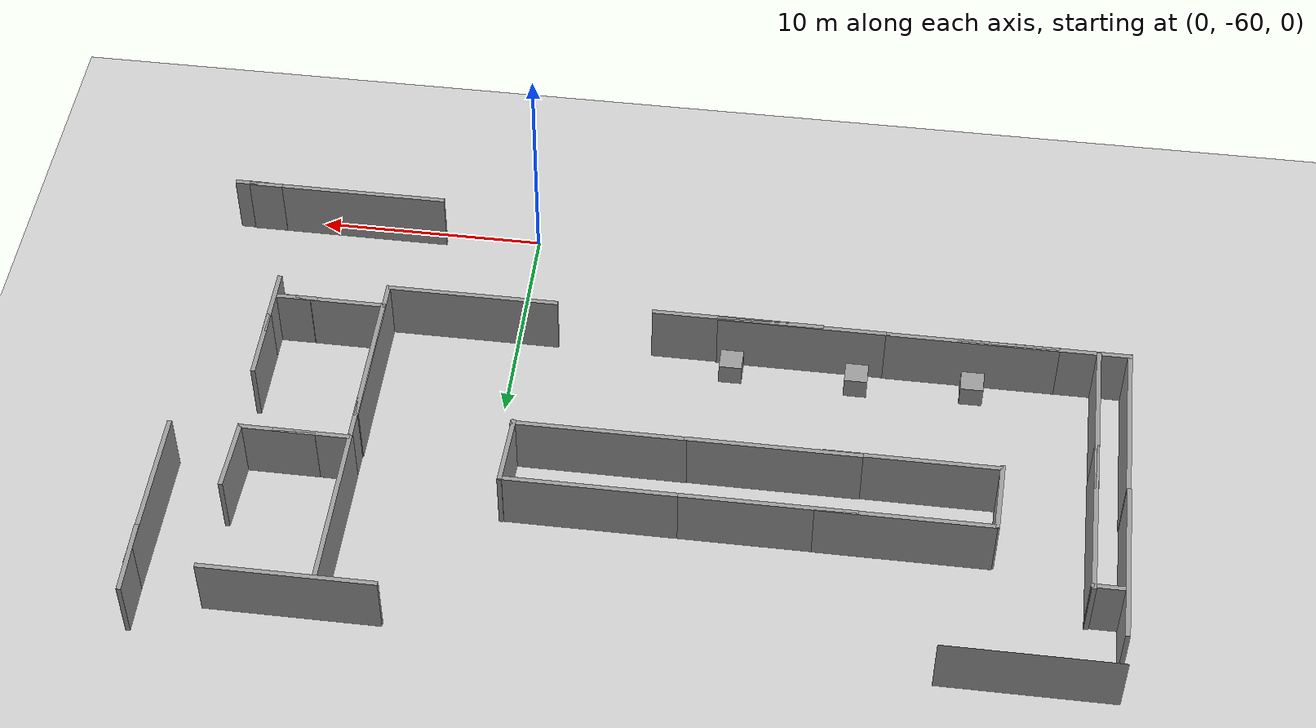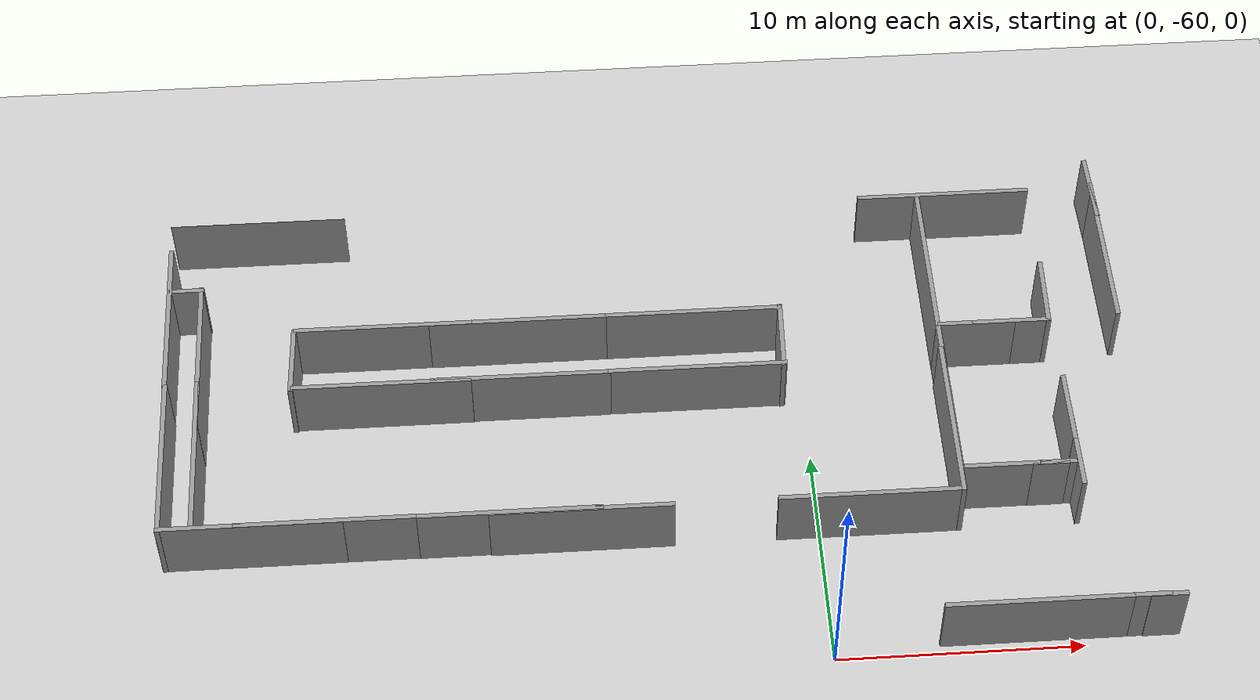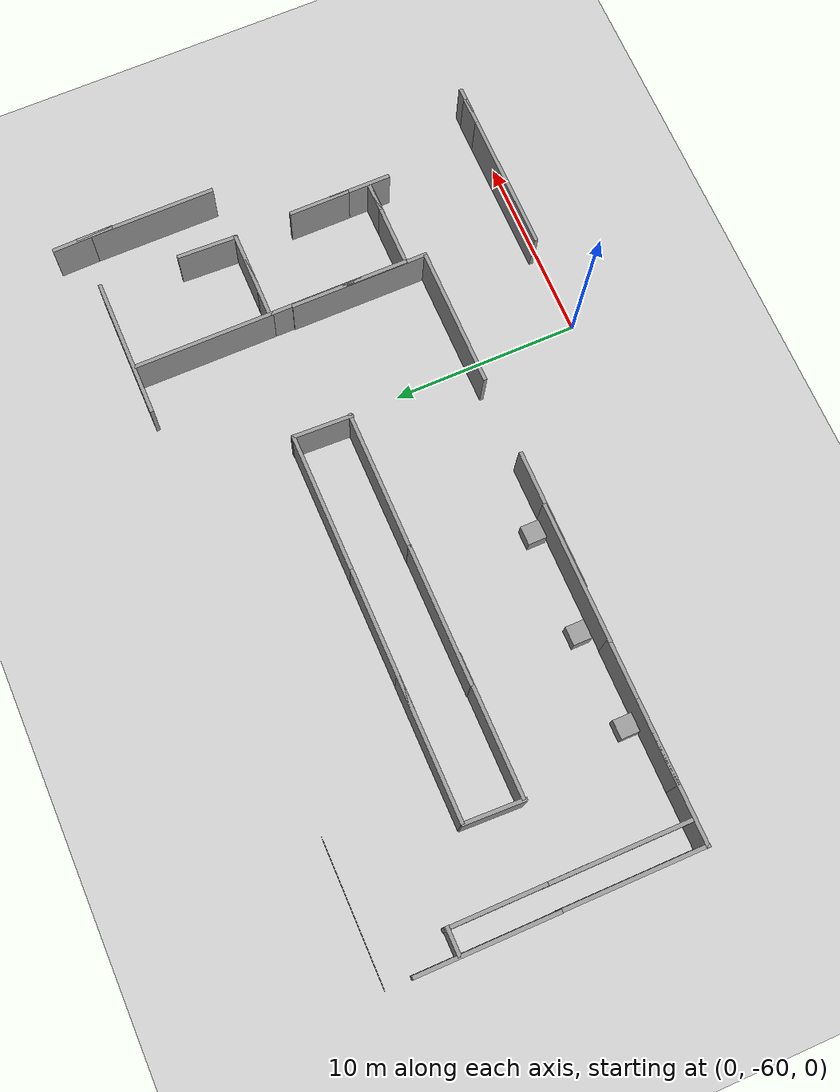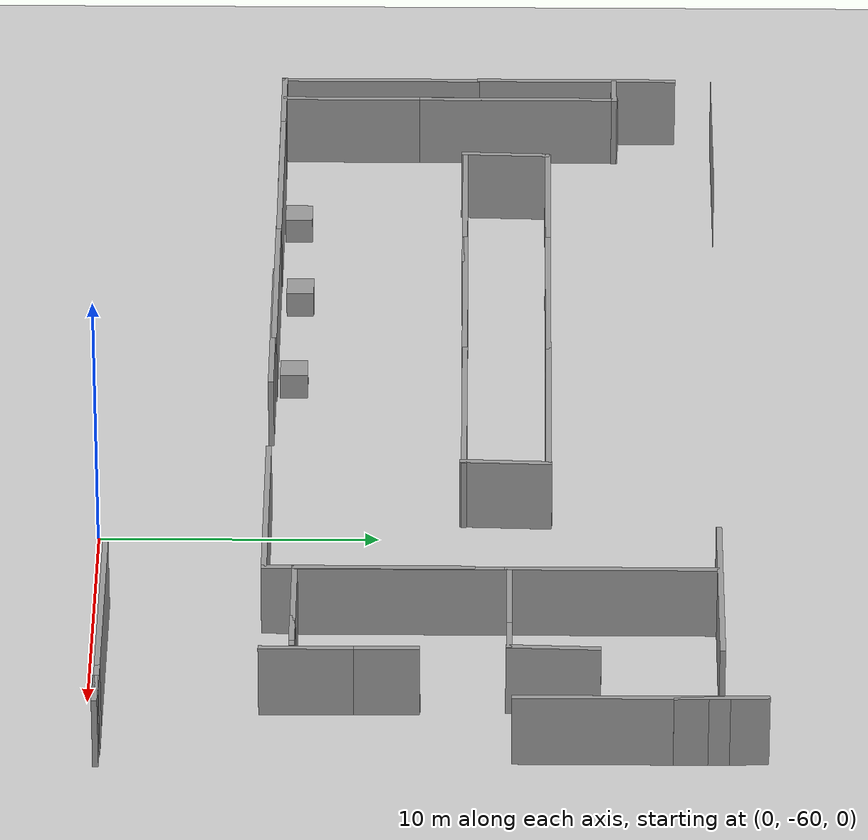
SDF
<sdf version="1.7">
 <world name="default">
  <model name="ground_plane">
   <static>1</static>
   <link name="link">
    <collision name="collision">
     <geometry><plane><normal>0 0 1</normal><size>100 100</size></plane></geometry>
     <surface>
      <contact><collide_bitmask>65535</collide_bitmask></contact>
      <friction><ode><mu>100</mu><mu2>50</mu2></ode></friction>
     </surface>
    </collision>
    <visual name="visual">
     <cast_shadows>0</cast_shadows>
     <geometry><plane><normal>0 0 1</normal><size>100 100</size></plane></geometry>
     <material>
      <script><uri>file://media/materials/scripts/gazebo.material</uri><name>Gazebo/Grey</name></script>
     </material>
    </visual>
   </link>
  </model>
  <model name="grey_wall_0_clone">
   <static>1</static>
   <link name="link">
    <pose>0 0 1.4 0 -0 0</pose>
    <collision name="collision"><geometry><box><size>7.5 0.2 2.8</size></box></geometry></collision>
    <visual name="visual">
     <cast_shadows>0</cast_shadows>
     <geometry><box><size>7.5 0.2 2.8</size></box></geometry>
     <material>
      <script>
       <uri>model://grey_wall/materials/scripts</uri>
       <uri>model://grey_wall/materials/textures</uri>
       <name>vrc/grey_wall</name>
      </script>
     </material>
    </visual>
   </link>
   <pose>-26.6851 -42.8415 0 0 -0 1.5708</pose>
  </model>
  <model name="grey_wall_0_clone_0">
   <static>1</static>
   <link name="link">
    <pose>0 0 1.4 0 -0 0</pose>
    <collision name="collision"><geometry><box><size>7.5 0.2 2.8</size></box></geometry></collision>
    <visual name="visual">
     <cast_shadows>0</cast_shadows>
     <geometry><box><size>7.5 0.2 2.8</size></box></geometry>
     <material>
      <script>
       <uri>model://grey_wall/materials/scripts</uri>
       <uri>model://grey_wall/materials/textures</uri>
       <name>vrc/grey_wall</name>
      </script>
     </material>
    </visual>
   </link>
   <pose>-26.661 -50.2699 0 0 -0 1.5708</pose>
  </model>
  <model name="grey_wall_1_clone_clone_clone_clone_clone_clone_0">
   <static>1</static>
   <link name="link">
    <pose>0 0 1.4 0 -0 0</pose>
    <collision name="collision"><geometry><box><size>7.5 0.2 2.8</size></box></geometry></collision>
    <visual name="visual">
     <cast_shadows>0</cast_shadows>
     <geometry><box><size>7.5 0.2 2.8</size></box></geometry>
     <material>
      <script>
       <uri>model://grey_wall/materials/scripts</uri>
       <uri>model://grey_wall/materials/textures</uri>
       <name>vrc/grey_wall</name>
      </script>
     </material>
    </visual>
   </link>
   <pose>6.90726 -37.9572 0 0 -0 0</pose>
  </model>
  <model name="slim_grey_wall_clone_0">
   <link name="link">
    <pose>0 0 1.4 0 -0 0</pose>
    <inertial>
     <mass>1</mass>
     <inertia><ixx>1</ixx><ixy>0</ixy><ixz>0</ixz><iyy>1</iyy><iyz>0</iyz><izz>1</izz></inertia>
    </inertial>
    <visual name="visual">
     <cast_shadows>0</cast_shadows>
     <geometry><box><size>7.5 0.0001 2.8</size></box></geometry>
     <material>
      <script>
       <uri>model://grey_wall/materials/scripts</uri>
       <uri>model://grey_wall/materials/textures</uri>
       <name>vrc/grey_wall</name>
      </script>
      <shader type="pixel"><normal_map>__default__</normal_map></shader>
      <ambient>1 1 1 1</ambient>
      <diffuse>1 1 1 1</diffuse>
      <specular>0 0 0 1</specular>
      <emissive>0 0 0 1</emissive>
     </material>
    </visual>
    <collision name="collision">
     <geometry><box><size>7.5 0.2 2.8</size></box></geometry>
     <surface>
      <friction>
       <ode><mu>1</mu><mu2>1</mu2><fdir1>0 0 0</fdir1><slip1>0</slip1><slip2>0</slip2></ode>
       <torsional>
        <coefficient>1</coefficient>
        <patch_radius>0</patch_radius>
        <surface_radius>0</surface_radius>
        <use_patch_radius>1</use_patch_radius>
        <ode><slip>0</slip></ode>
       </torsional>
      </friction>
      <bounce><restitution_coefficient>0</restitution_coefficient><threshold>1e+06</threshold></bounce>
      <contact>
       <collide_without_contact>0</collide_without_contact>
       <collide_without_contact_bitmask>1</collide_without_contact_bitmask>
       <collide_bitmask>1</collide_bitmask>
       <ode>
        <soft_cfm>0</soft_cfm>
        <soft_erp>0.2</soft_erp>
        <kp>1e+13</kp>
        <kd>1</kd>
        <max_vel>0.01</max_vel>
        <min_depth>0</min_depth>
       </ode>
       <bullet>
        <split_impulse>1</split_impulse>
        <split_impulse_penetration_threshold>-0.01</split_impulse_penetration_threshold>
        <soft_cfm>0</soft_cfm>
        <soft_erp>0.2</soft_erp>
        <kp>1e+13</kp>
        <kd>1</kd>
       </bullet>
      </contact>
     </surface>
    </collision>
   </link>
   <static>1</static>
   <pose>-23.0069 -37.7411 0 0 -0 0</pose>
  </model>
  <model name="grey_wall_0_clone_clone_clone_0_clone_clone">
   <static>1</static>
   <link name="link">
    <pose>0 0 1.4 0 -0 0</pose>
    <collision name="collision"><geometry><box><size>7.5 0.2 2.8</size></box></geometry></collision>
    <visual name="visual">
     <cast_shadows>0</cast_shadows>
     <geometry><box><size>7.5 0.2 2.8</size></box></geometry>
     <material>
      <script>
       <uri>model://grey_wall/materials/scripts</uri>
       <uri>model://grey_wall/materials/textures</uri>
       <name>vrc/grey_wall</name>
      </script>
     </material>
    </visual>
   </link>
   <pose>5.74657 -41.7513 0 0 -0 1.5708</pose>
  </model>
  <model name="grey_wall_0_clone_clone_clone_0_clone_clone_clone">
   <static>1</static>
   <link name="link">
    <pose>0 0 1.4 0 -0 0</pose>
    <collision name="collision"><geometry><box><size>7.5 0.2 2.8</size></box></geometry></collision>
    <visual name="visual">
     <cast_shadows>0</cast_shadows>
     <geometry><box><size>7.5 0.2 2.8</size></box></geometry>
     <material>
      <script>
       <uri>model://grey_wall/materials/scripts</uri>
       <uri>model://grey_wall/materials/textures</uri>
       <name>vrc/grey_wall</name>
      </script>
     </material>
    </visual>
   </link>
   <pose>5.75015 -49.1568 0 0 -0 1.5708</pose>
  </model>
  <model name="grey_wall_1_clone_clone_0">
   <static>1</static>
   <link name="link">
    <pose>0 0 1.4 0 -0 0</pose>
    <collision name="collision"><geometry><box><size>7.5 0.2 2.8</size></box></geometry></collision>
    <visual name="visual">
     <cast_shadows>0</cast_shadows>
     <geometry><box><size>7.5 0.2 2.8</size></box></geometry>
     <material>
      <script>
       <uri>model://grey_wall/materials/scripts</uri>
       <uri>model://grey_wall/materials/textures</uri>
       <name>vrc/grey_wall</name>
      </script>
     </material>
    </visual>
   </link>
   <pose>1.9515 -53.9357 0 0 -0 0</pose>
  </model>
  <model name="grey_wall_1_clone_clone_2">
   <static>1</static>
   <link name="link">
    <pose>0 0 1.4 0 -0 0</pose>
    <collision name="collision"><geometry><box><size>7.5 0.2 2.8</size></box></geometry></collision>
    <visual name="visual">
     <cast_shadows>0</cast_shadows>
     <geometry><box><size>7.5 0.2 2.8</size></box></geometry>
     <material>
      <script>
       <uri>model://grey_wall/materials/scripts</uri>
       <uri>model://grey_wall/materials/textures</uri>
       <name>vrc/grey_wall</name>
      </script>
     </material>
    </visual>
   </link>
   <pose>-12.5905 -53.915 0 0 -0 0</pose>
  </model>
  <model name="grey_wall_1_clone_clone_3">
   <static>1</static>
   <link name="link">
    <pose>0 0 1.4 0 -0 0</pose>
    <collision name="collision"><geometry><box><size>7.5 0.2 2.8</size></box></geometry></collision>
    <visual name="visual">
     <cast_shadows>0</cast_shadows>
     <geometry><box><size>7.5 0.2 2.8</size></box></geometry>
     <material>
      <script>
       <uri>model://grey_wall/materials/scripts</uri>
       <uri>model://grey_wall/materials/textures</uri>
       <name>vrc/grey_wall</name>
      </script>
     </material>
    </visual>
   </link>
   <pose>-19.9128 -53.8982 0 0 -0 0</pose>
  </model>
  <model name="grey_wall_1_clone_clone_4">
   <static>1</static>
   <link name="link">
    <pose>0 0 1.4 0 -0 0</pose>
    <collision name="collision"><geometry><box><size>7.5 0.2 2.8</size></box></geometry></collision>
    <visual name="visual">
     <cast_shadows>0</cast_shadows>
     <geometry><box><size>7.5 0.2 2.8</size></box></geometry>
     <material>
      <script>
       <uri>model://grey_wall/materials/scripts</uri>
       <uri>model://grey_wall/materials/textures</uri>
       <name>vrc/grey_wall</name>
      </script>
     </material>
    </visual>
   </link>
   <pose>-23.0182 -53.9042 0 0 -0 0</pose>
  </model>
  <model name="grey_wall_1_clone_clone_5">
   <static>1</static>
   <link name="link">
    <pose>0 0 1.4 0 -0 0</pose>
    <collision name="collision"><geometry><box><size>7.5 0.2 2.8</size></box></geometry></collision>
    <visual name="visual">
     <cast_shadows>0</cast_shadows>
     <geometry><box><size>7.5 0.2 2.8</size></box></geometry>
     <material>
      <script>
       <uri>model://grey_wall/materials/scripts</uri>
       <uri>model://grey_wall/materials/textures</uri>
       <name>vrc/grey_wall</name>
      </script>
     </material>
    </visual>
   </link>
   <pose>-4.50642 -43.943 0 0 -0 0</pose>
  </model>
  <model name="grey_wall_1_clone_clone_1">
   <static>1</static>
   <link name="link">
    <pose>0 0 1.4 0 -0 0</pose>
    <collision name="collision"><geometry><box><size>7.5 0.2 2.8</size></box></geometry></collision>
    <visual name="visual">
     <cast_shadows>0</cast_shadows>
     <geometry><box><size>7.5 0.2 2.8</size></box></geometry>
     <material>
      <script>
       <uri>model://grey_wall/materials/scripts</uri>
       <uri>model://grey_wall/materials/textures</uri>
       <name>vrc/grey_wall</name>
      </script>
     </material>
    </visual>
   </link>
   <pose>-9.70908 -53.9627 0 0 -0 0</pose>
  </model>
  <model name="grey_wall_1_clone_clone_6">
   <static>1</static>
   <link name="link">
    <pose>0 0 1.4 0 -0 0</pose>
    <collision name="collision"><geometry><box><size>7.5 0.2 2.8</size></box></geometry></collision>
    <visual name="visual">
     <cast_shadows>0</cast_shadows>
     <geometry><box><size>7.5 0.2 2.8</size></box></geometry>
     <material>
      <script>
       <uri>model://grey_wall/materials/scripts</uri>
       <uri>model://grey_wall/materials/textures</uri>
       <name>vrc/grey_wall</name>
      </script>
     </material>
    </visual>
   </link>
   <pose>-11.9424 -43.9449 0 0 -0 0</pose>
  </model>
  <model name="grey_wall_1_clone_clone_7">
   <static>1</static>
   <link name="link">
    <pose>0 0 1.4 0 -0 0</pose>
    <collision name="collision"><geometry><box><size>7.5 0.2 2.8</size></box></geometry></collision>
    <visual name="visual">
     <cast_shadows>0</cast_shadows>
     <geometry><box><size>7.5 0.2 2.8</size></box></geometry>
     <material>
      <script>
       <uri>model://grey_wall/materials/scripts</uri>
       <uri>model://grey_wall/materials/textures</uri>
       <name>vrc/grey_wall</name>
      </script>
     </material>
    </visual>
   </link>
   <pose>-17.6318 -43.9366 0 0 -0 0</pose>
  </model>
  <model name="grey_wall_1_clone_clone_5_clone">
   <static>1</static>
   <link name="link">
    <pose>0 0 1.4 0 -0 0</pose>
    <collision name="collision"><geometry><box><size>7.5 0.2 2.8</size></box></geometry></collision>
    <visual name="visual">
     <cast_shadows>0</cast_shadows>
     <geometry><box><size>7.5 0.2 2.8</size></box></geometry>
     <material>
      <script>
       <uri>model://grey_wall/materials/scripts</uri>
       <uri>model://grey_wall/materials/textures</uri>
       <name>vrc/grey_wall</name>
      </script>
     </material>
    </visual>
   </link>
   <pose>-4.54194 -46.9677 0 0 -0 0</pose>
  </model>
  <model name="grey_wall_1_clone_clone_5_clone_0">
   <static>1</static>
   <link name="link">
    <pose>0 0 1.4 0 -0 0</pose>
    <collision name="collision"><geometry><box><size>7.5 0.2 2.8</size></box></geometry></collision>
    <visual name="visual">
     <cast_shadows>0</cast_shadows>
     <geometry><box><size>7.5 0.2 2.8</size></box></geometry>
     <material>
      <script>
       <uri>model://grey_wall/materials/scripts</uri>
       <uri>model://grey_wall/materials/textures</uri>
       <name>vrc/grey_wall</name>
      </script>
     </material>
    </visual>
   </link>
   <pose>-11.9242 -46.982 0 0 -0 0</pose>
  </model>
  <model name="grey_wall_1_clone_clone_5_clone_1">
   <static>1</static>
   <link name="link">
    <pose>0 0 1.4 0 -0 0</pose>
    <collision name="collision"><geometry><box><size>7.5 0.2 2.8</size></box></geometry></collision>
    <visual name="visual">
     <cast_shadows>0</cast_shadows>
     <geometry><box><size>7.5 0.2 2.8</size></box></geometry>
     <material>
      <script>
       <uri>model://grey_wall/materials/scripts</uri>
       <uri>model://grey_wall/materials/textures</uri>
       <name>vrc/grey_wall</name>
      </script>
     </material>
    </visual>
   </link>
   <pose>-17.7254 -47.0135 0 0 -0 0</pose>
  </model>
  <model name="grey_wall_0_clone_clone_clone_0_clone_0_clone">
   <static>1</static>
   <link name="link">
    <pose>0 0 1.4 0 -0 0</pose>
    <collision name="collision"><geometry><box><size>7.5 0.2 2.8</size></box></geometry></collision>
    <visual name="visual">
     <cast_shadows>0</cast_shadows>
     <geometry><box><size>7.5 0.2 2.8</size></box></geometry>
     <material>
      <script>
       <uri>model://grey_wall/materials/scripts</uri>
       <uri>model://grey_wall/materials/textures</uri>
       <name>vrc/grey_wall</name>
      </script>
     </material>
    </visual>
   </link>
   <pose>-25.3364 -50.1866 0 0 -0 1.5708</pose>
  </model>
  <model name="grey_wall_0_clone_clone_clone_0_clone_0_clone_0">
   <static>1</static>
   <link name="link">
    <pose>0 0 1.4 0 -0 0</pose>
    <collision name="collision"><geometry><box><size>7.5 0.2 2.8</size></box></geometry></collision>
    <visual name="visual">
     <cast_shadows>0</cast_shadows>
     <geometry><box><size>7.5 0.2 2.8</size></box></geometry>
     <material>
      <script>
       <uri>model://grey_wall/materials/scripts</uri>
       <uri>model://grey_wall/materials/textures</uri>
       <name>vrc/grey_wall</name>
      </script>
     </material>
    </visual>
   </link>
   <pose>-25.3288 -45.0192 0 0 -0 1.5708</pose>
  </model>
  <model name="half_grey_wall_clone_clone_0_clone_clone_clone_clone_0">
   <link name="link">
    <pose>0 0 1.4 0 -0 0</pose>
    <inertial>
     <mass>1</mass>
     <inertia><ixx>1</ixx><ixy>0</ixy><ixz>0</ixz><iyy>1</iyy><iyz>0</iyz><izz>1</izz></inertia>
    </inertial>
    <visual name="visual">
     <cast_shadows>0</cast_shadows>
     <geometry><box><size>3.3 0.2 2.8</size></box></geometry>
     <material>
      <script>
       <uri>model://grey_wall/materials/scripts</uri>
       <uri>model://grey_wall/materials/textures</uri>
       <name>vrc/grey_wall</name>
      </script>
      <shader type="pixel"><normal_map>__default__</normal_map></shader>
      <ambient>1 1 1 1</ambient>
      <diffuse>1 1 1 1</diffuse>
      <specular>0 0 0 1</specular>
      <emissive>0 0 0 1</emissive>
     </material>
    </visual>
    <collision name="collision">
     <geometry><box><size>3.3 0.2 2.8</size></box></geometry>
     <surface>
      <friction>
       <ode><mu>1</mu><mu2>1</mu2><fdir1>0 0 0</fdir1><slip1>0</slip1><slip2>0</slip2></ode>
       <torsional>
        <coefficient>1</coefficient>
        <patch_radius>0</patch_radius>
        <surface_radius>0</surface_radius>
        <use_patch_radius>1</use_patch_radius>
        <ode><slip>0</slip></ode>
       </torsional>
      </friction>
      <bounce><restitution_coefficient>0</restitution_coefficient><threshold>1e+06</threshold></bounce>
      <contact>
       <collide_without_contact>0</collide_without_contact>
       <collide_without_contact_bitmask>1</collide_without_contact_bitmask>
       <collide_bitmask>1</collide_bitmask>
       <ode>
        <soft_cfm>0</soft_cfm>
        <soft_erp>0.2</soft_erp>
        <kp>1e+13</kp>
        <kd>1</kd>
        <max_vel>0.01</max_vel>
        <min_depth>0</min_depth>
       </ode>
       <bullet>
        <split_impulse>1</split_impulse>
        <split_impulse_penetration_threshold>-0.01</split_impulse_penetration_threshold>
        <soft_cfm>0</soft_cfm>
        <soft_erp>0.2</soft_erp>
        <kp>1e+13</kp>
        <kd>1</kd>
       </bullet>
      </contact>
     </surface>
    </collision>
   </link>
   <static>1</static>
   <pose>10.5048 -43.8057 0 0 0 -1.605</pose>
  </model>
  <model name="half_grey_wall_clone_clone_0_clone_clone_clone_clone_1">
   <link name="link">
    <pose>0 0 1.4 0 -0 0</pose>
    <inertial>
     <mass>1</mass>
     <inertia><ixx>1</ixx><ixy>0</ixy><ixz>0</ixz><iyy>1</iyy><iyz>0</iyz><izz>1</izz></inertia>
    </inertial>
    <visual name="visual">
     <cast_shadows>0</cast_shadows>
     <geometry><box><size>3.3 0.2 2.8</size></box></geometry>
     <material>
      <script>
       <uri>model://grey_wall/materials/scripts</uri>
       <uri>model://grey_wall/materials/textures</uri>
       <name>vrc/grey_wall</name>
      </script>
      <shader type="pixel"><normal_map>__default__</normal_map></shader>
      <ambient>1 1 1 1</ambient>
      <diffuse>1 1 1 1</diffuse>
      <specular>0 0 0 1</specular>
      <emissive>0 0 0 1</emissive>
     </material>
    </visual>
    <collision name="collision">
     <geometry><box><size>3.3 0.2 2.8</size></box></geometry>
     <surface>
      <friction>
       <ode><mu>1</mu><mu2>1</mu2><fdir1>0 0 0</fdir1><slip1>0</slip1><slip2>0</slip2></ode>
       <torsional>
        <coefficient>1</coefficient>
        <patch_radius>0</patch_radius>
        <surface_radius>0</surface_radius>
        <use_patch_radius>1</use_patch_radius>
        <ode><slip>0</slip></ode>
       </torsional>
      </friction>
      <bounce><restitution_coefficient>0</restitution_coefficient><threshold>1e+06</threshold></bounce>
      <contact>
       <collide_without_contact>0</collide_without_contact>
       <collide_without_contact_bitmask>1</collide_without_contact_bitmask>
       <collide_bitmask>1</collide_bitmask>
       <ode>
        <soft_cfm>0</soft_cfm>
        <soft_erp>0.2</soft_erp>
        <kp>1e+13</kp>
        <kd>1</kd>
        <max_vel>0.01</max_vel>
        <min_depth>0</min_depth>
       </ode>
       <bullet>
        <split_impulse>1</split_impulse>
        <split_impulse_penetration_threshold>-0.01</split_impulse_penetration_threshold>
        <soft_cfm>0</soft_cfm>
        <soft_erp>0.2</soft_erp>
        <kp>1e+13</kp>
        <kd>1</kd>
       </bullet>
      </contact>
     </surface>
    </collision>
   </link>
   <static>1</static>
   <pose>10.5916 -52.3746 -0 0 0 -1.56959</pose>
  </model>
  <model name="half_grey_wall_clone_clone_0_clone_clone_clone_clone_2_clone">
   <link name="link">
    <pose>0 0 1.4 0 -0 0</pose>
    <inertial>
     <mass>1</mass>
     <inertia><ixx>1</ixx><ixy>0</ixy><ixz>0</ixz><iyy>1</iyy><iyz>0</iyz><izz>1</izz></inertia>
    </inertial>
    <visual name="visual">
     <cast_shadows>0</cast_shadows>
     <geometry><box><size>3.3 0.2 2.8</size></box></geometry>
     <material>
      <script>
       <uri>model://grey_wall/materials/scripts</uri>
       <uri>model://grey_wall/materials/textures</uri>
       <name>vrc/grey_wall</name>
      </script>
      <shader type="pixel"><normal_map>__default__</normal_map></shader>
      <ambient>1 1 1 1</ambient>
      <diffuse>1 1 1 1</diffuse>
      <specular>0 0 0 1</specular>
      <emissive>0 0 0 1</emissive>
     </material>
    </visual>
    <collision name="collision">
     <geometry><box><size>3.3 0.2 2.8</size></box></geometry>
     <surface>
      <friction>
       <ode><mu>1</mu><mu2>1</mu2><fdir1>0 0 0</fdir1><slip1>0</slip1><slip2>0</slip2></ode>
       <torsional>
        <coefficient>1</coefficient>
        <patch_radius>0</patch_radius>
        <surface_radius>0</surface_radius>
        <use_patch_radius>1</use_patch_radius>
        <ode><slip>0</slip></ode>
       </torsional>
      </friction>
      <bounce><restitution_coefficient>0</restitution_coefficient><threshold>1e+06</threshold></bounce>
      <contact>
       <collide_without_contact>0</collide_without_contact>
       <collide_without_contact_bitmask>1</collide_without_contact_bitmask>
       <collide_bitmask>1</collide_bitmask>
       <ode>
        <soft_cfm>0</soft_cfm>
        <soft_erp>0.2</soft_erp>
        <kp>1e+13</kp>
        <kd>1</kd>
        <max_vel>0.01</max_vel>
        <min_depth>0</min_depth>
       </ode>
       <bullet>
        <split_impulse>1</split_impulse>
        <split_impulse_penetration_threshold>-0.01</split_impulse_penetration_threshold>
        <soft_cfm>0</soft_cfm>
        <soft_erp>0.2</soft_erp>
        <kp>1e+13</kp>
        <kd>1</kd>
       </bullet>
      </contact>
     </surface>
    </collision>
   </link>
   <static>1</static>
   <pose>8.86702 -45.3389 0 0 -0 3.13943</pose>
  </model>
  <model name="half_grey_wall_clone_clone_0_clone_clone_clone_clone_1_clone">
   <link name="link">
    <pose>0 0 1.4 0 -0 0</pose>
    <inertial>
     <mass>1</mass>
     <inertia><ixx>1</ixx><ixy>0</ixy><ixz>0</ixz><iyy>1</iyy><iyz>0</iyz><izz>1</izz></inertia>
    </inertial>
    <visual name="visual">
     <cast_shadows>0</cast_shadows>
     <geometry><box><size>3.3 0.2 2.8</size></box></geometry>
     <material>
      <script>
       <uri>model://grey_wall/materials/scripts</uri>
       <uri>model://grey_wall/materials/textures</uri>
       <name>vrc/grey_wall</name>
      </script>
      <shader type="pixel"><normal_map>__default__</normal_map></shader>
      <ambient>1 1 1 1</ambient>
      <diffuse>1 1 1 1</diffuse>
      <specular>0 0 0 1</specular>
      <emissive>0 0 0 1</emissive>
     </material>
    </visual>
    <collision name="collision">
     <geometry><box><size>3.3 0.2 2.8</size></box></geometry>
     <surface>
      <friction>
       <ode><mu>1</mu><mu2>1</mu2><fdir1>0 0 0</fdir1><slip1>0</slip1><slip2>0</slip2></ode>
       <torsional>
        <coefficient>1</coefficient>
        <patch_radius>0</patch_radius>
        <surface_radius>0</surface_radius>
        <use_patch_radius>1</use_patch_radius>
        <ode><slip>0</slip></ode>
       </torsional>
      </friction>
      <bounce><restitution_coefficient>0</restitution_coefficient><threshold>1e+06</threshold></bounce>
      <contact>
       <collide_without_contact>0</collide_without_contact>
       <collide_without_contact_bitmask>1</collide_without_contact_bitmask>
       <collide_bitmask>1</collide_bitmask>
       <ode>
        <soft_cfm>0</soft_cfm>
        <soft_erp>0.2</soft_erp>
        <kp>1e+13</kp>
        <kd>1</kd>
        <max_vel>0.01</max_vel>
        <min_depth>0</min_depth>
       </ode>
       <bullet>
        <split_impulse>1</split_impulse>
        <split_impulse_penetration_threshold>-0.01</split_impulse_penetration_threshold>
        <soft_cfm>0</soft_cfm>
        <soft_erp>0.2</soft_erp>
        <kp>1e+13</kp>
        <kd>1</kd>
       </bullet>
      </contact>
     </surface>
    </collision>
   </link>
   <static>1</static>
   <pose>10.5821 -50.0694 -0 0 0 -1.56959</pose>
  </model>
  <model name="half_grey_wall_clone_clone_0_clone_clone_clone_clone_2_clone_clone">
   <link name="link">
    <pose>0 0 1.4 0 -0 0</pose>
    <inertial>
     <mass>1</mass>
     <inertia><ixx>1</ixx><ixy>0</ixy><ixz>0</ixz><iyy>1</iyy><iyz>0</iyz><izz>1</izz></inertia>
    </inertial>
    <visual name="visual">
     <cast_shadows>0</cast_shadows>
     <geometry><box><size>3.3 0.2 2.8</size></box></geometry>
     <material>
      <script>
       <uri>model://grey_wall/materials/scripts</uri>
       <uri>model://grey_wall/materials/textures</uri>
       <name>vrc/grey_wall</name>
      </script>
      <shader type="pixel"><normal_map>__default__</normal_map></shader>
      <ambient>1 1 1 1</ambient>
      <diffuse>1 1 1 1</diffuse>
      <specular>0 0 0 1</specular>
      <emissive>0 0 0 1</emissive>
     </material>
    </visual>
    <collision name="collision">
     <geometry><box><size>3.3 0.2 2.8</size></box></geometry>
     <surface>
      <friction>
       <ode><mu>1</mu><mu2>1</mu2><fdir1>0 0 0</fdir1><slip1>0</slip1><slip2>0</slip2></ode>
       <torsional>
        <coefficient>1</coefficient>
        <patch_radius>0</patch_radius>
        <surface_radius>0</surface_radius>
        <use_patch_radius>1</use_patch_radius>
        <ode><slip>0</slip></ode>
       </torsional>
      </friction>
      <bounce><restitution_coefficient>0</restitution_coefficient><threshold>1e+06</threshold></bounce>
      <contact>
       <collide_without_contact>0</collide_without_contact>
       <collide_without_contact_bitmask>1</collide_without_contact_bitmask>
       <collide_bitmask>1</collide_bitmask>
       <ode>
        <soft_cfm>0</soft_cfm>
        <soft_erp>0.2</soft_erp>
        <kp>1e+13</kp>
        <kd>1</kd>
        <max_vel>0.01</max_vel>
        <min_depth>0</min_depth>
       </ode>
       <bullet>
        <split_impulse>1</split_impulse>
        <split_impulse_penetration_threshold>-0.01</split_impulse_penetration_threshold>
        <soft_cfm>0</soft_cfm>
        <soft_erp>0.2</soft_erp>
        <kp>1e+13</kp>
        <kd>1</kd>
       </bullet>
      </contact>
     </surface>
    </collision>
   </link>
   <static>1</static>
   <pose>7.39037 -45.3362 0 0 -0 3.13943</pose>
  </model>
  <model name="half_grey_wall_clone_clone_clone_0_clone_clone_0_clone_clone_0_clone_0_clone_7">
   <link name="link">
    <pose>0 0 1.4 0 -0 0</pose>
    <inertial>
     <mass>1</mass>
     <inertia><ixx>1</ixx><ixy>0</ixy><ixz>0</ixz><iyy>1</iyy><iyz>0</iyz><izz>1</izz></inertia>
    </inertial>
    <visual name="visual">
     <cast_shadows>0</cast_shadows>
     <geometry><box><size>1.5 0.2 2.8</size></box></geometry>
     <material>
      <script>
       <uri>model://grey_wall/materials/scripts</uri>
       <uri>model://grey_wall/materials/textures</uri>
       <name>vrc/grey_wall</name>
      </script>
      <shader type="pixel"><normal_map>__default__</normal_map></shader>
      <ambient>1 1 1 1</ambient>
      <diffuse>1 1 1 1</diffuse>
      <specular>0 0 0 1</specular>
      <emissive>0 0 0 1</emissive>
     </material>
    </visual>
    <collision name="collision">
     <geometry><box><size>1.5 0.2 2.8</size></box></geometry>
     <surface>
      <friction>
       <ode><mu>1</mu><mu2>1</mu2><fdir1>0 0 0</fdir1><slip1>0</slip1><slip2>0</slip2></ode>
       <torsional>
        <coefficient>1</coefficient>
        <patch_radius>0</patch_radius>
        <surface_radius>0</surface_radius>
        <use_patch_radius>1</use_patch_radius>
        <ode><slip>0</slip></ode>
       </torsional>
      </friction>
      <bounce><restitution_coefficient>0</restitution_coefficient><threshold>1e+06</threshold></bounce>
      <contact>
       <collide_without_contact>0</collide_without_contact>
       <collide_without_contact_bitmask>1</collide_without_contact_bitmask>
       <collide_bitmask>1</collide_bitmask>
       <ode>
        <soft_cfm>0</soft_cfm>
        <soft_erp>0.2</soft_erp>
        <kp>1e+13</kp>
        <kd>1</kd>
        <max_vel>0.01</max_vel>
        <min_depth>0</min_depth>
       </ode>
       <bullet>
        <split_impulse>1</split_impulse>
        <split_impulse_penetration_threshold>-0.01</split_impulse_penetration_threshold>
        <soft_cfm>0</soft_cfm>
        <soft_erp>0.2</soft_erp>
        <kp>1e+13</kp>
        <kd>1</kd>
       </bullet>
      </contact>
     </surface>
    </collision>
   </link>
   <static>1</static>
   <pose>9.41617 -52.8704 0 0 0 -3.13942</pose>
  </model>
  <model name="half_grey_wall_clone_clone_clone_0_clone_clone_0_clone_clone_0_clone_0_clone_8">
   <link name="link">
    <pose>0 0 1.4 0 -0 0</pose>
    <inertial>
     <mass>1</mass>
     <inertia><ixx>1</ixx><ixy>0</ixy><ixz>0</ixz><iyy>1</iyy><iyz>0</iyz><izz>1</izz></inertia>
    </inertial>
    <visual name="visual">
     <cast_shadows>0</cast_shadows>
     <geometry><box><size>1.5 0.2 2.8</size></box></geometry>
     <material>
      <script>
       <uri>model://grey_wall/materials/scripts</uri>
       <uri>model://grey_wall/materials/textures</uri>
       <name>vrc/grey_wall</name>
      </script>
      <shader type="pixel"><normal_map>__default__</normal_map></shader>
      <ambient>1 1 1 1</ambient>
      <diffuse>1 1 1 1</diffuse>
      <specular>0 0 0 1</specular>
      <emissive>0 0 0 1</emissive>
     </material>
    </visual>
    <collision name="collision">
     <geometry><box><size>1.5 0.2 2.8</size></box></geometry>
     <surface>
      <friction>
       <ode><mu>1</mu><mu2>1</mu2><fdir1>0 0 0</fdir1><slip1>0</slip1><slip2>0</slip2></ode>
       <torsional>
        <coefficient>1</coefficient>
        <patch_radius>0</patch_radius>
        <surface_radius>0</surface_radius>
        <use_patch_radius>1</use_patch_radius>
        <ode><slip>0</slip></ode>
       </torsional>
      </friction>
      <bounce><restitution_coefficient>0</restitution_coefficient><threshold>1e+06</threshold></bounce>
      <contact>
       <collide_without_contact>0</collide_without_contact>
       <collide_without_contact_bitmask>1</collide_without_contact_bitmask>
       <collide_bitmask>1</collide_bitmask>
       <ode>
        <soft_cfm>0</soft_cfm>
        <soft_erp>0.2</soft_erp>
        <kp>1e+13</kp>
        <kd>1</kd>
        <max_vel>0.01</max_vel>
        <min_depth>0</min_depth>
       </ode>
       <bullet>
        <split_impulse>1</split_impulse>
        <split_impulse_penetration_threshold>-0.01</split_impulse_penetration_threshold>
        <soft_cfm>0</soft_cfm>
        <soft_erp>0.2</soft_erp>
        <kp>1e+13</kp>
        <kd>1</kd>
       </bullet>
      </contact>
     </surface>
    </collision>
   </link>
   <static>1</static>
   <pose>9.73041 -52.8572 0 0 0 -3.13942</pose>
  </model>
  <model name="grey_wall_0_clone_clone_clone_0_clone_clone_clone_clone">
   <static>1</static>
   <link name="link">
    <pose>0 0 1.4 0 -0 0</pose>
    <collision name="collision"><geometry><box><size>7.5 0.2 2.8</size></box></geometry></collision>
    <visual name="visual">
     <cast_shadows>0</cast_shadows>
     <geometry><box><size>7.5 0.2 2.8</size></box></geometry>
     <material>
      <script>
       <uri>model://grey_wall/materials/scripts</uri>
       <uri>model://grey_wall/materials/textures</uri>
       <name>vrc/grey_wall</name>
      </script>
     </material>
    </visual>
   </link>
   <pose>5.71075 -50.2926 0 0 -0 1.5708</pose>
  </model>
  <model name="half_grey_wall_clone_clone_0_clone_clone_clone_clone_0_clone">
   <link name="link">
    <pose>0 0 1.4 0 -0 0</pose>
    <inertial>
     <mass>1</mass>
     <inertia><ixx>1</ixx><ixy>0</ixy><ixz>0</ixz><iyy>1</iyy><iyz>0</iyz><izz>1</izz></inertia>
    </inertial>
    <visual name="visual">
     <cast_shadows>0</cast_shadows>
     <geometry><box><size>3.3 0.2 2.8</size></box></geometry>
     <material>
      <script>
       <uri>model://grey_wall/materials/scripts</uri>
       <uri>model://grey_wall/materials/textures</uri>
       <name>vrc/grey_wall</name>
      </script>
      <shader type="pixel"><normal_map>__default__</normal_map></shader>
      <ambient>1 1 1 1</ambient>
      <diffuse>1 1 1 1</diffuse>
      <specular>0 0 0 1</specular>
      <emissive>0 0 0 1</emissive>
     </material>
    </visual>
    <collision name="collision">
     <geometry><box><size>3.3 0.2 2.8</size></box></geometry>
     <surface>
      <friction>
       <ode><mu>1</mu><mu2>1</mu2><fdir1>0 0 0</fdir1><slip1>0</slip1><slip2>0</slip2></ode>
       <torsional>
        <coefficient>1</coefficient>
        <patch_radius>0</patch_radius>
        <surface_radius>0</surface_radius>
        <use_patch_radius>1</use_patch_radius>
        <ode><slip>0</slip></ode>
       </torsional>
      </friction>
      <bounce><restitution_coefficient>0</restitution_coefficient><threshold>1e+06</threshold></bounce>
      <contact>
       <collide_without_contact>0</collide_without_contact>
       <collide_without_contact_bitmask>1</collide_without_contact_bitmask>
       <collide_bitmask>1</collide_bitmask>
       <ode>
        <soft_cfm>0</soft_cfm>
        <soft_erp>0.2</soft_erp>
        <kp>1e+13</kp>
        <kd>1</kd>
        <max_vel>0.01</max_vel>
        <min_depth>0</min_depth>
       </ode>
       <bullet>
        <split_impulse>1</split_impulse>
        <split_impulse_penetration_threshold>-0.01</split_impulse_penetration_threshold>
        <soft_cfm>0</soft_cfm>
        <soft_erp>0.2</soft_erp>
        <kp>1e+13</kp>
        <kd>1</kd>
       </bullet>
      </contact>
     </surface>
    </collision>
   </link>
   <static>1</static>
   <pose>-0.877511 -45.4687 0 0 0 -1.605</pose>
  </model>
  <model name="half_grey_wall_clone_clone_0_clone_clone_clone_clone_0_clone_0">
   <link name="link">
    <pose>0 0 1.4 0 -0 0</pose>
    <inertial>
     <mass>1</mass>
     <inertia><ixx>1</ixx><ixy>0</ixy><ixz>0</ixz><iyy>1</iyy><iyz>0</iyz><izz>1</izz></inertia>
    </inertial>
    <visual name="visual">
     <cast_shadows>0</cast_shadows>
     <geometry><box><size>3.3 0.2 2.8</size></box></geometry>
     <material>
      <script>
       <uri>model://grey_wall/materials/scripts</uri>
       <uri>model://grey_wall/materials/textures</uri>
       <name>vrc/grey_wall</name>
      </script>
      <shader type="pixel"><normal_map>__default__</normal_map></shader>
      <ambient>1 1 1 1</ambient>
      <diffuse>1 1 1 1</diffuse>
      <specular>0 0 0 1</specular>
      <emissive>0 0 0 1</emissive>
     </material>
    </visual>
    <collision name="collision">
     <geometry><box><size>3.3 0.2 2.8</size></box></geometry>
     <surface>
      <friction>
       <ode><mu>1</mu><mu2>1</mu2><fdir1>0 0 0</fdir1><slip1>0</slip1><slip2>0</slip2></ode>
       <torsional>
        <coefficient>1</coefficient>
        <patch_radius>0</patch_radius>
        <surface_radius>0</surface_radius>
        <use_patch_radius>1</use_patch_radius>
        <ode><slip>0</slip></ode>
       </torsional>
      </friction>
      <bounce><restitution_coefficient>0</restitution_coefficient><threshold>1e+06</threshold></bounce>
      <contact>
       <collide_without_contact>0</collide_without_contact>
       <collide_without_contact_bitmask>1</collide_without_contact_bitmask>
       <collide_bitmask>1</collide_bitmask>
       <ode>
        <soft_cfm>0</soft_cfm>
        <soft_erp>0.2</soft_erp>
        <kp>1e+13</kp>
        <kd>1</kd>
        <max_vel>0.01</max_vel>
        <min_depth>0</min_depth>
       </ode>
       <bullet>
        <split_impulse>1</split_impulse>
        <split_impulse_penetration_threshold>-0.01</split_impulse_penetration_threshold>
        <soft_cfm>0</soft_cfm>
        <soft_erp>0.2</soft_erp>
        <kp>1e+13</kp>
        <kd>1</kd>
       </bullet>
      </contact>
     </surface>
    </collision>
   </link>
   <static>1</static>
   <pose>-21.4175 -45.5201 0 0 0 -1.605</pose>
  </model>
  <model name="half_grey_wall_clone_clone_clone_0_clone_clone_0_clone_clone_0_clone_0_clone_4_clone">
   <link name="link">
    <pose>0 0 1.4 0 -0 0</pose>
    <inertial>
     <mass>1</mass>
     <inertia><ixx>1</ixx><ixy>0</ixy><ixz>0</ixz><iyy>1</iyy><iyz>0</iyz><izz>1</izz></inertia>
    </inertial>
    <visual name="visual">
     <cast_shadows>0</cast_shadows>
     <geometry><box><size>1.5 0.2 2.8</size></box></geometry>
     <material>
      <script>
       <uri>model://grey_wall/materials/scripts</uri>
       <uri>model://grey_wall/materials/textures</uri>
       <name>vrc/grey_wall</name>
      </script>
      <shader type="pixel"><normal_map>__default__</normal_map></shader>
      <ambient>1 1 1 1</ambient>
      <diffuse>1 1 1 1</diffuse>
      <specular>0 0 0 1</specular>
      <emissive>0 0 0 1</emissive>
     </material>
    </visual>
    <collision name="collision">
     <geometry><box><size>1.5 0.2 2.8</size></box></geometry>
     <surface>
      <friction>
       <ode><mu>1</mu><mu2>1</mu2><fdir1>0 0 0</fdir1><slip1>0</slip1><slip2>0</slip2></ode>
       <torsional>
        <coefficient>1</coefficient>
        <patch_radius>0</patch_radius>
        <surface_radius>0</surface_radius>
        <use_patch_radius>1</use_patch_radius>
        <ode><slip>0</slip></ode>
       </torsional>
      </friction>
      <bounce><restitution_coefficient>0</restitution_coefficient><threshold>1e+06</threshold></bounce>
      <contact>
       <collide_without_contact>0</collide_without_contact>
       <collide_without_contact_bitmask>1</collide_without_contact_bitmask>
       <collide_bitmask>1</collide_bitmask>
       <ode>
        <soft_cfm>0</soft_cfm>
        <soft_erp>0.2</soft_erp>
        <kp>1e+13</kp>
        <kd>1</kd>
        <max_vel>0.01</max_vel>
        <min_depth>0</min_depth>
       </ode>
       <bullet>
        <split_impulse>1</split_impulse>
        <split_impulse_penetration_threshold>-0.01</split_impulse_penetration_threshold>
        <soft_cfm>0</soft_cfm>
        <soft_erp>0.2</soft_erp>
        <kp>1e+13</kp>
        <kd>1</kd>
       </bullet>
      </contact>
     </surface>
    </collision>
   </link>
   <static>1</static>
   <pose>-25.9596 -41.4211 0 0 0 -3.13942</pose>
  </model>
  <model name="half_grey_wall_clone_clone_0_clone_clone_clone_clone_2_clone_clone_clone">
   <link name="link">
    <pose>0 0 1.4 0 -0 0</pose>
    <inertial>
     <mass>1</mass>
     <inertia><ixx>1</ixx><ixy>0</ixy><ixz>0</ixz><iyy>1</iyy><iyz>0</iyz><izz>1</izz></inertia>
    </inertial>
    <visual name="visual">
     <cast_shadows>0</cast_shadows>
     <geometry><box><size>3.3 0.2 2.8</size></box></geometry>
     <material>
      <script>
       <uri>model://grey_wall/materials/scripts</uri>
       <uri>model://grey_wall/materials/textures</uri>
       <name>vrc/grey_wall</name>
      </script>
      <shader type="pixel"><normal_map>__default__</normal_map></shader>
      <ambient>1 1 1 1</ambient>
      <diffuse>1 1 1 1</diffuse>
      <specular>0 0 0 1</specular>
      <emissive>0 0 0 1</emissive>
     </material>
    </visual>
    <collision name="collision">
     <geometry><box><size>3.3 0.2 2.8</size></box></geometry>
     <surface>
      <friction>
       <ode><mu>1</mu><mu2>1</mu2><fdir1>0 0 0</fdir1><slip1>0</slip1><slip2>0</slip2></ode>
       <torsional>
        <coefficient>1</coefficient>
        <patch_radius>0</patch_radius>
        <surface_radius>0</surface_radius>
        <use_patch_radius>1</use_patch_radius>
        <ode><slip>0</slip></ode>
       </torsional>
      </friction>
      <bounce><restitution_coefficient>0</restitution_coefficient><threshold>1e+06</threshold></bounce>
      <contact>
       <collide_without_contact>0</collide_without_contact>
       <collide_without_contact_bitmask>1</collide_without_contact_bitmask>
       <collide_bitmask>1</collide_bitmask>
       <ode>
        <soft_cfm>0</soft_cfm>
        <soft_erp>0.2</soft_erp>
        <kp>1e+13</kp>
        <kd>1</kd>
        <max_vel>0.01</max_vel>
        <min_depth>0</min_depth>
       </ode>
       <bullet>
        <split_impulse>1</split_impulse>
        <split_impulse_penetration_threshold>-0.01</split_impulse_penetration_threshold>
        <soft_cfm>0</soft_cfm>
        <soft_erp>0.2</soft_erp>
        <kp>1e+13</kp>
        <kd>1</kd>
       </bullet>
      </contact>
     </surface>
    </collision>
   </link>
   <static>1</static>
   <pose>7.31403 -52.8556 0 0 -0 3.13943</pose>
  </model>
  <model name="half_grey_wall_clone_clone_0_clone_clone_clone_clone_0_clone_0_clone_clone_1_clone_clone_clone_0_clone_clone">
   <link name="link">
    <pose>0 0 1.4 0 -0 0</pose>
    <inertial>
     <mass>1</mass>
     <inertia><ixx>1</ixx><ixy>0</ixy><ixz>0</ixz><iyy>1</iyy><iyz>0</iyz><izz>1</izz></inertia>
    </inertial>
    <visual name="visual">
     <cast_shadows>0</cast_shadows>
     <geometry><box><size>3.3 0.2 2.8</size></box></geometry>
     <material>
      <script>
       <uri>model://grey_wall/materials/scripts</uri>
       <uri>model://grey_wall/materials/textures</uri>
       <name>vrc/grey_wall</name>
      </script>
      <shader type="pixel"><normal_map>__default__</normal_map></shader>
      <ambient>1 1 1 1</ambient>
      <diffuse>1 1 1 1</diffuse>
      <specular>0 0 0 1</specular>
      <emissive>0 0 0 1</emissive>
     </material>
    </visual>
    <collision name="collision">
     <geometry><box><size>3.3 0.2 2.8</size></box></geometry>
     <surface>
      <friction>
       <ode><mu>1</mu><mu2>1</mu2><fdir1>0 0 0</fdir1><slip1>0</slip1><slip2>0</slip2></ode>
       <torsional>
        <coefficient>1</coefficient>
        <patch_radius>0</patch_radius>
        <surface_radius>0</surface_radius>
        <use_patch_radius>1</use_patch_radius>
        <ode><slip>0</slip></ode>
       </torsional>
      </friction>
      <bounce><restitution_coefficient>0</restitution_coefficient><threshold>1e+06</threshold></bounce>
      <contact>
       <collide_without_contact>0</collide_without_contact>
       <collide_without_contact_bitmask>1</collide_without_contact_bitmask>
       <collide_bitmask>1</collide_bitmask>
       <ode>
        <soft_cfm>0</soft_cfm>
        <soft_erp>0.2</soft_erp>
        <kp>1e+13</kp>
        <kd>1</kd>
        <max_vel>0.01</max_vel>
        <min_depth>0</min_depth>
       </ode>
       <bullet>
        <split_impulse>1</split_impulse>
        <split_impulse_penetration_threshold>-0.01</split_impulse_penetration_threshold>
        <soft_cfm>0</soft_cfm>
        <soft_erp>0.2</soft_erp>
        <kp>1e+13</kp>
        <kd>1</kd>
       </bullet>
      </contact>
     </surface>
    </collision>
   </link>
   <static>1</static>
   <pose>13.4294 -38.0357 -0 0 0 -1.5482</pose>
  </model>
  <model name="grey_wall_0_clone_clone_clone_0_clone_clone_clone_1">
   <static>1</static>
   <link name="link">
    <pose>0 0 1.4 0 -0 0</pose>
    <collision name="collision"><geometry><box><size>7.5 0.2 2.8</size></box></geometry></collision>
    <visual name="visual">
     <cast_shadows>0</cast_shadows>
     <geometry><box><size>7.5 0.2 2.8</size></box></geometry>
     <material>
      <script>
       <uri>model://grey_wall/materials/scripts</uri>
       <uri>model://grey_wall/materials/textures</uri>
       <name>vrc/grey_wall</name>
      </script>
     </material>
    </visual>
   </link>
   <pose>13.4396 -41.4939 0 0 -0 1.5708</pose>
  </model>
  <model name="unit_box">
   <pose>-20.0874 -53.2403 0.499995 0 1e-05 0</pose>
   <link name="link">
    <inertial>
     <mass>1</mass>
     <inertia>
      <ixx>0.166667</ixx>
      <ixy>0</ixy>
      <ixz>0</ixz>
      <iyy>0.166667</iyy>
      <iyz>0</iyz>
      <izz>0.166667</izz>
     </inertia>
    </inertial>
    <collision name="collision"><geometry><box><size>1 1 1</size></box></geometry></collision>
    <visual name="visual">
     <geometry><box><size>1 1 1</size></box></geometry>
     <material>
      <script><name>Gazebo/Grey</name><uri>file://media/materials/scripts/gazebo.material</uri></script>
     </material>
    </visual>
   </link>
  </model>
  <model name="unit_box_clone">
   <pose>-15.048 -53.0949 0.499995 -1e-05 -0 -0</pose>
   <link name="link">
    <inertial>
     <mass>1</mass>
     <inertia>
      <ixx>0.166667</ixx>
      <ixy>0</ixy>
      <ixz>0</ixz>
      <iyy>0.166667</iyy>
      <iyz>0</iyz>
      <izz>0.166667</izz>
     </inertia>
    </inertial>
    <collision name="collision"><geometry><box><size>1 1 1</size></box></geometry></collision>
    <visual name="visual">
     <geometry><box><size>1 1 1</size></box></geometry>
     <material>
      <script><name>Gazebo/Grey</name><uri>file://media/materials/scripts/gazebo.material</uri></script>
     </material>
    </visual>
   </link>
  </model>
  <model name="unit_box_clone_0">
   <pose>-9.55391 -53.2124 0.499995 0 1e-05 -5e-06</pose>
   <link name="link">
    <inertial>
     <mass>1</mass>
     <inertia>
      <ixx>0.166667</ixx>
      <ixy>0</ixy>
      <ixz>0</ixz>
      <iyy>0.166667</iyy>
      <iyz>0</iyz>
      <izz>0.166667</izz>
     </inertia>
    </inertial>
    <collision name="collision"><geometry><box><size>1 1 1</size></box></geometry></collision>
    <visual name="visual">
     <geometry><box><size>1 1 1</size></box></geometry>
     <material>
      <script><name>Gazebo/Grey</name><uri>file://media/materials/scripts/gazebo.material</uri></script>
     </material>
    </visual>
   </link>
  </model>
  <model name="grey_wall_1_clone_clone_1_clone_clone_0">
   <static>1</static>
   <link name="link">
    <pose>0 0 1.4 0 -0 0</pose>
    <collision name="collision"><geometry><box><size>7.5 0.2 2.8</size></box></geometry></collision>
    <visual name="visual">
     <cast_shadows>0</cast_shadows>
     <geometry><box><size>7.5 0.2 2.8</size></box></geometry>
     <material>
      <script>
       <uri>model://grey_wall/materials/scripts</uri>
       <uri>model://grey_wall/materials/textures</uri>
       <name>vrc/grey_wall</name>
      </script>
     </material>
    </visual>
   </link>
   <pose>7.95648 -59.5374 0 0 -0 0</pose>
  </model>
  <model name="half_grey_wall_clone_clone_clone_0_clone_clone_0_clone_clone_0_clone_0_clone_4_clone_0_clone">
   <link name="link">
    <pose>0 0 1.4 0 -0 0</pose>
    <inertial>
     <mass>1</mass>
     <inertia><ixx>1</ixx><ixy>0</ixy><ixz>0</ixz><iyy>1</iyy><iyz>0</iyz><izz>1</izz></inertia>
    </inertial>
    <visual name="visual">
     <cast_shadows>0</cast_shadows>
     <geometry><box><size>1.5 0.2 2.8</size></box></geometry>
     <material>
      <script>
       <uri>model://grey_wall/materials/scripts</uri>
       <uri>model://grey_wall/materials/textures</uri>
       <name>vrc/grey_wall</name>
      </script>
      <shader type="pixel"><normal_map>__default__</normal_map></shader>
      <ambient>1 1 1 1</ambient>
      <diffuse>1 1 1 1</diffuse>
      <specular>0 0 0 1</specular>
      <emissive>0 0 0 1</emissive>
     </material>
    </visual>
    <collision name="collision">
     <geometry><box><size>1.5 0.2 2.8</size></box></geometry>
     <surface>
      <friction>
       <ode><mu>1</mu><mu2>1</mu2><fdir1>0 0 0</fdir1><slip1>0</slip1><slip2>0</slip2></ode>
       <torsional>
        <coefficient>1</coefficient>
        <patch_radius>0</patch_radius>
        <surface_radius>0</surface_radius>
        <use_patch_radius>1</use_patch_radius>
        <ode><slip>0</slip></ode>
       </torsional>
      </friction>
      <bounce><restitution_coefficient>0</restitution_coefficient><threshold>1e+06</threshold></bounce>
      <contact>
       <collide_without_contact>0</collide_without_contact>
       <collide_without_contact_bitmask>1</collide_without_contact_bitmask>
       <collide_bitmask>1</collide_bitmask>
       <ode>
        <soft_cfm>0</soft_cfm>
        <soft_erp>0.2</soft_erp>
        <kp>1e+13</kp>
        <kd>1</kd>
        <max_vel>0.01</max_vel>
        <min_depth>0</min_depth>
       </ode>
       <bullet>
        <split_impulse>1</split_impulse>
        <split_impulse_penetration_threshold>-0.01</split_impulse_penetration_threshold>
        <soft_cfm>0</soft_cfm>
        <soft_erp>0.2</soft_erp>
        <kp>1e+13</kp>
        <kd>1</kd>
       </bullet>
      </contact>
     </surface>
    </collision>
   </link>
   <static>1</static>
   <pose>12.4189 -59.5341 0 0 0 -3.13942</pose>
  </model>
  <model name="half_grey_wall_clone_clone_clone_0_clone_clone_0_clone_clone_0_clone_0_clone_4_clone_0_clone_0">
   <link name="link">
    <pose>0 0 1.4 0 -0 0</pose>
    <inertial>
     <mass>1</mass>
     <inertia><ixx>1</ixx><ixy>0</ixy><ixz>0</ixz><iyy>1</iyy><iyz>0</iyz><izz>1</izz></inertia>
    </inertial>
    <visual name="visual">
     <cast_shadows>0</cast_shadows>
     <geometry><box><size>1.5 0.2 2.8</size></box></geometry>
     <material>
      <script>
       <uri>model://grey_wall/materials/scripts</uri>
       <uri>model://grey_wall/materials/textures</uri>
       <name>vrc/grey_wall</name>
      </script>
      <shader type="pixel"><normal_map>__default__</normal_map></shader>
      <ambient>1 1 1 1</ambient>
      <diffuse>1 1 1 1</diffuse>
      <specular>0 0 0 1</specular>
      <emissive>0 0 0 1</emissive>
     </material>
    </visual>
    <collision name="collision">
     <geometry><box><size>1.5 0.2 2.8</size></box></geometry>
     <surface>
      <friction>
       <ode><mu>1</mu><mu2>1</mu2><fdir1>0 0 0</fdir1><slip1>0</slip1><slip2>0</slip2></ode>
       <torsional>
        <coefficient>1</coefficient>
        <patch_radius>0</patch_radius>
        <surface_radius>0</surface_radius>
        <use_patch_radius>1</use_patch_radius>
        <ode><slip>0</slip></ode>
       </torsional>
      </friction>
      <bounce><restitution_coefficient>0</restitution_coefficient><threshold>1e+06</threshold></bounce>
      <contact>
       <collide_without_contact>0</collide_without_contact>
       <collide_without_contact_bitmask>1</collide_without_contact_bitmask>
       <collide_bitmask>1</collide_bitmask>
       <ode>
        <soft_cfm>0</soft_cfm>
        <soft_erp>0.2</soft_erp>
        <kp>1e+13</kp>
        <kd>1</kd>
        <max_vel>0.01</max_vel>
        <min_depth>0</min_depth>
       </ode>
       <bullet>
        <split_impulse>1</split_impulse>
        <split_impulse_penetration_threshold>-0.01</split_impulse_penetration_threshold>
        <soft_cfm>0</soft_cfm>
        <soft_erp>0.2</soft_erp>
        <kp>1e+13</kp>
        <kd>1</kd>
       </bullet>
      </contact>
     </surface>
    </collision>
   </link>
   <static>1</static>
   <pose>13.069 -59.5641 0 0 0 -3.13942</pose>
  </model>
 </world>
</sdf>
